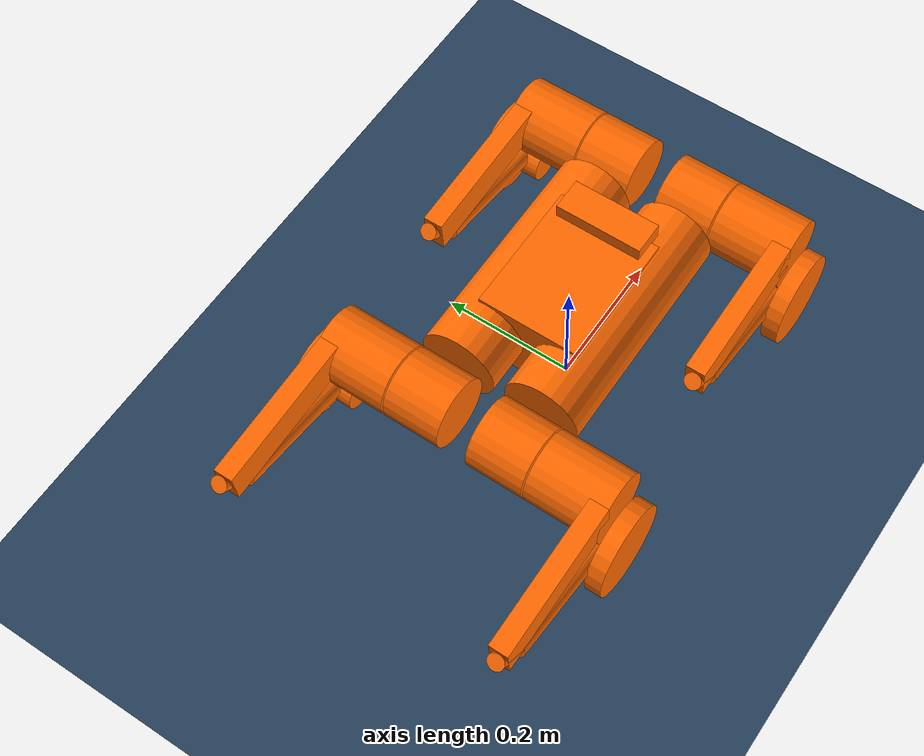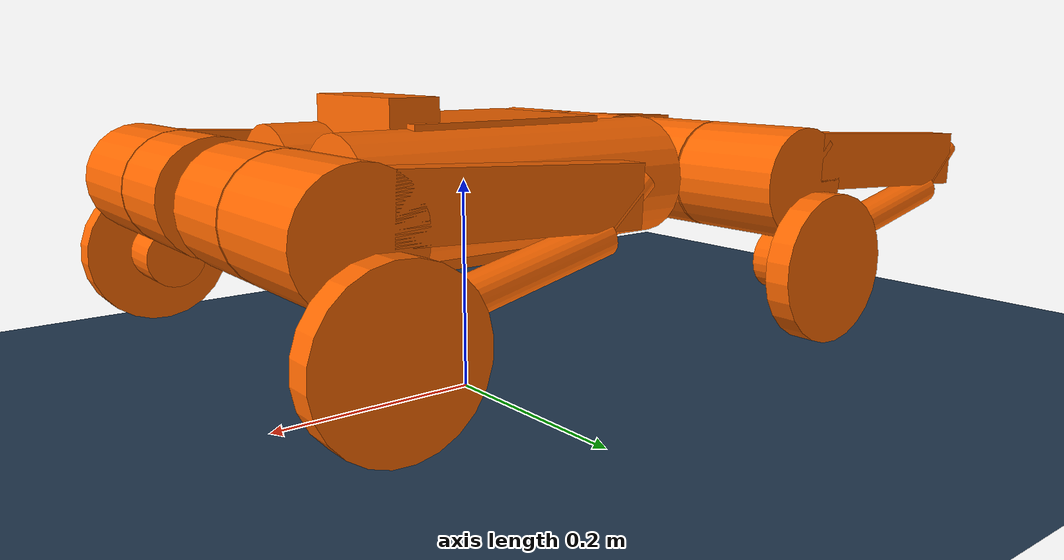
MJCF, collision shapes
<mujoco model="hb50w scene">
  <include file="hb50w.xml"/>

  <statistic center="0 0 0.15" extent="0.8"/>

  <visual>
    <headlight diffuse="0.6 0.6 0.6" ambient="0.3 0.3 0.3" specular="0 0 0"/>
    <rgba haze="0.15 0.25 0.35 1"/>
    <global azimuth="-130" elevation="-20"/>
  </visual>

  <asset>
    <texture type="skybox" builtin="gradient" rgb1="0.3 0.5 0.7" rgb2="0 0 0" width="512" height="3072"/>
    <texture type="2d" name="groundplane" builtin="checker" mark="edge" rgb1="0.2 0.3 0.4" rgb2="0.1 0.2 0.3"
      markrgb="0.8 0.8 0.8" width="300" height="300"/>
    <material name="groundplane" texture="groundplane" texuniform="true" texrepeat="5 5" reflectance="0.2"/>
  </asset>

  <worldbody>
    <light pos="0 0 1.5" dir="0 0 -1" directional="true"/>
    <geom name="floor" size="0 0 0.05" type="plane" material="groundplane"/>
  </worldbody>
</mujoco>

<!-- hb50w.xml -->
<mujoco model="hb50w">
  <compiler angle="radian" autolimits="true"/>

  <default>
    <default class="hb50w">
      <default class="drive">
        <joint axis="1 0 0" armature="0.0094" damping="0.1" frictionloss="0.48"/>
        <motor ctrlrange="-24 24"/>
      </default>
      <default class="wheel">
        <joint axis="1 0 0" armature="0.0016" damping="0.1" frictionloss="0.1"/>
        <motor ctrlrange="-7 7"/>
      </default>
      <default class="visual">
        <geom type="mesh" contype="0" conaffinity="0" group="2"/>
      </default>
      <default class="collision">
        <geom group="3" priority="1" condim="3" friction="0.9" solref="0.005 1" rgba="1 0.41 0 0.2"/>
      </default>
    </default>
  </default>

  <asset>
    <material name="silver" rgba="0.6 0.6 0.6 1" specular="0.1" shininess="0.05"/>
    <material name="black" rgba="0.1 0.1 0.1 1" specular="0.1" shininess="0.05"/>
    <material name="red" rgba="1 0 0 1" specular="0.1" shininess="0.05"/>
    <mesh name="body" file="../../meshes/hb50w/visual/hb50w_body.stl" scale="0.001 0.001 0.001"/>
    <mesh name="l0_fr_rl" file="../../meshes/hb50w/visual/hb50w_l0_fr_rl.stl" scale="0.001 0.001 0.001"/>
    <mesh name="l0_fl_rr" file="../../meshes/hb50w/visual/hb50w_l0_fl_rr.stl" scale="0.001 0.001 0.001"/>
    <mesh name="l1_fr" file="../../meshes/hb50w/visual/hb50w_l1_fr.stl" scale="0.001 0.001 0.001"/>
    <mesh name="l1_fl" file="../../meshes/hb50w/visual/hb50w_l1_fl.stl" scale="0.001 0.001 0.001"/>
    <mesh name="l1_rl" file="../../meshes/hb50w/visual/hb50w_l1_rl.stl" scale="0.001 0.001 0.001"/>
    <mesh name="l1_rr" file="../../meshes/hb50w/visual/hb50w_l1_rr.stl" scale="0.001 0.001 0.001"/>
    <mesh name="l2_r" file="../../meshes/hb50w/visual/hb50w_l2_r.stl" scale="0.001 0.001 0.001"/>
    <mesh name="l2_l" file="../../meshes/hb50w/visual/hb50w_l2_l.stl" scale="0.001 0.001 0.001"/>
    <mesh name="wheel" file="../../meshes/hb50w/visual/hb50w_wheel.stl" scale="0.001 0.001 0.001"/>
  </asset>

  <worldbody>
    <body name="body" pos="0 0 0.2" childclass="hb50w">
      <site name="imu" pos="0.069301 0 0"/>
      <inertial pos="0 0 0" mass="9.222" diaginertia="0.04644 0.10130 0.13120"/>
      <freejoint name="root"/>
      <geom mesh="body" material="silver" class="visual"/>
      <geom type="box" size="0.098 0.076 0.062" pos="0 0 -0.002" class="collision"/>
      <geom type="cylinder" size="0.056 0.165" pos="0 0.064 0" euler="0 1.570796 0" class="collision"/>
      <geom type="cylinder" size="0.056 0.165" pos="0 -0.064 0" euler="0 1.570796 0" class="collision"/>
      <geom type="box" size="0.024 0.064 0.024" pos="0.09 0 0.057" class="collision"/>
      <body name="fr_l0" pos="0.1661 -0.064 0">
        <inertial pos="0.059079 0.004785 -0.000588" mass="1.536" diaginertia="0.001492 0.001701 0.001759"/>
        <joint name="fr_j0" range="-1.047198 1.570796" class="drive"/>
        <geom mesh="l0_fr_rl" material="silver" class="visual"/>
        <geom type="cylinder" size="0.051 0.042" pos="0.0585 0 0" euler="1.570796 0 0" class="collision"/>
        <body name="fr_l1" pos="0.0585 -0.0425 0" quat="0.707107 0 0 -0.707107">
          <inertial pos="0.055224 -0.015337 0.003302" mass="1.784" diaginertia="0.006461 0.002438 0.007101"/>
          <joint name="fr_j1" range="-1.570796 1.570796" class="drive"/>
          <geom mesh="l1_fr" material="silver" class="visual"/>
          <geom type="cylinder" size="0.051 0.055" pos="0.057 0 0" euler="0 1.570796 0" class="collision"/>
          <geom type="box" size="0.014 0.11 0.026" pos="0.098 -0.134 0.013" euler="0.05 0 0" class="collision"/>
          <body name="fr_l2" pos="0.10015 -0.22 0" quat="0.173648 0.984808 0 0">
            <inertial pos="-0.001567 -0.190811 0.000848" mass="0.526" diaginertia="0.002319 0.0001582 0.002306"/>
            <joint name="fr_j2" range="-2.705260 0" class="drive"/>
            <geom quat="0 1 0 0" mesh="l2_r" material="silver" class="visual"/>
            <geom type="cylinder" size="0.012 0.03" pos="0 0.01 0.004" euler="1.2 0 0" class="collision"/>
            <geom type="cylinder" size="0.016 0.098" pos="0 -0.11 0.006" euler="1.7 0.01 -0.005" class="collision"/>
            <geom type="cylinder" size="0.028 0.025" pos="-0.0072 -0.22 0" euler="0 1.570796 0" class="collision"/>
            <body name="fr_w" pos="0.0175 -0.22 0">
              <inertial pos="0.006794 0 0" mass="0.235" diaginertia="0.0007179 0.0003692 0.0003692"/>
              <joint name="fr_j3" class="wheel"/>
              <geom name="fr_wheel" type="cylinder" size="0.0679 0.012" pos="0.009 0 0" euler="0 1.570796 0"
                class="collision"/>
              <geom mesh="wheel" material="red" class="visual"/>
            </body>
          </body>
        </body>
      </body>
      <body name="fl_l0" pos="0.1661 0.064 0">
        <inertial pos="0.059079 -0.004785 0.000588" mass="1.536" diaginertia="0.001492 0.001701 0.001759"/>
        <joint name="fl_j0" range="-1.570796 1.047198" class="drive"/>
        <geom mesh="l0_fl_rr" material="silver" class="visual"/>
        <geom type="cylinder" size="0.051 0.042" pos="0.0585 0 0" euler="1.570796 0 0" class="collision"/>
        <body name="fl_l1" pos="0.0585 0.0425 0" quat="0.707107 0 0 0.707107">
          <inertial pos="0.055224 0.015337 0.003302" mass="1.784" diaginertia="0.006461 0.002438 0.007101"/>
          <joint name="fl_j1" range="-1.570796 1.570796" class="drive"/>
          <geom quat="0 0 0 1" mesh="l1_fl" material="silver" class="visual"/>
          <geom type="cylinder" size="0.051 0.055" pos="0.057 0 0" euler="0 1.570796 0" class="collision"/>
          <geom type="box" size="0.014 0.11 0.026" pos="0.098 0.134 0.013" euler="-0.05 0 0" class="collision"/>
          <body name="fl_l2" pos="0.10015 0.22 0" quat="0.173648 -0.984808 0 0">
            <inertial pos="-0.001567 0.190811 0.000848" mass="0.526" diaginertia="0.002319 0.0001582 0.002306"/>
            <joint name="fl_j2" range="0 2.705260" class="drive"/>
            <geom quat="0 0 1 0" mesh="l2_l" material="silver" class="visual"/>
            <geom type="cylinder" size="0.012 0.03" pos="0 -0.01 0.004" euler="-1.2 0 0" class="collision"/>
            <geom type="cylinder" size="0.016 0.098" pos="0 0.11 0.006" euler="-1.7 0.01 0.005" class="collision"/>
            <geom type="cylinder" size="0.028 0.025" pos="-0.0072 0.22 0" euler="0 1.570796 0" class="collision"/>
            <body name="fl_w" pos="0.0175 0.22 0">
              <inertial pos="0.006794 0 0" mass="0.235" diaginertia="0.0007179 0.0003692 0.0003692"/>
              <joint name="fl_j3" class="wheel"/>
              <geom name="fl_wheel" type="cylinder" size="0.0679 0.012" pos="0.009 0 0" euler="0 1.570796 0"
                class="collision"/>
              <geom mesh="wheel" material="black" class="visual"/>
            </body>
          </body>
        </body>
      </body>
      <body name="rl_l0" pos="-0.1645 0.064 0" quat="0 0 0 -1">
        <inertial pos="0.058684 0.004487 0.000600" mass="1.525" diaginertia="0.001474 0.001666 0.001711"/>
        <joint name="rl_j0" range="-1.047198 1.570796" class="drive"/>
        <geom mesh="l0_fr_rl" material="silver" class="visual"/>
        <geom type="cylinder" size="0.051 0.042" pos="0.0585 0 0" euler="1.570796 0 0" class="collision"/>
        <body name="rl_l1" pos="0.0585 -0.0425 0" quat="0.707107 0 0 -0.707107">
          <inertial pos="0.055591 0.019865 0.002679" mass="1.753" diaginertia="0.006329 0.002338 0.006986"/>
          <joint name="rl_j1" range="-3.141593 1.570796" class="drive"/>
          <geom quat="0 0 0 1" mesh="l1_rl" material="silver" class="visual"/>
          <geom type="cylinder" size="0.051 0.055" pos="0.057 0 0" euler="0 1.570796 0" class="collision"/>
          <geom type="box" size="0.014 0.11 0.026" pos="0.098 0.134 0.013" euler="-0.05 0 0" class="collision"/>
          <body name="rl_l2" pos="0.10015 0.22 0" quat="0.173648 -0.984808 0 0">
            <inertial pos="-0.001567 0.190811 0.000848" mass="0.526" diaginertia="0.002319 0.0001582 0.002306"/>
            <joint name="rl_j2" range="0 2.705260" class="drive"/>
            <geom quat="0 0 1 0" mesh="l2_l" material="silver" class="visual"/>
            <geom type="cylinder" size="0.012 0.03" pos="0 -0.01 0.004" euler="-1.2 0 0" class="collision"/>
            <geom type="cylinder" size="0.016 0.098" pos="0 0.11 0.006" euler="-1.7 0.01 0.005" class="collision"/>
            <geom type="cylinder" size="0.028 0.025" pos="-0.0072 0.22 0" euler="0 1.570796 0" class="collision"/>
            <body name="rl_w" pos="0.0175 0.22 0">
              <inertial pos="0.006794 0 0" mass="0.235" diaginertia="0.0007179 0.0003692 0.0003692"/>
              <joint name="rl_j3" class="wheel"/>
              <geom name="rl_wheel" type="cylinder" size="0.0679 0.012" pos="0.009 0 0" euler="0 1.570796 0"
                class="collision"/>
              <geom mesh="wheel" material="black" class="visual"/>
            </body>
          </body>
        </body>
      </body>
      <body name="rr_l0" pos="-0.1645 -0.064 0" quat="0 0 0 -1">
        <inertial pos="0.058684 -0.004487 -0.000600" mass="1.525" diaginertia="0.001474 0.001666 0.001711"/>
        <joint name="rr_j0" range="-1.570796 1.047198" class="drive"/>
        <geom mesh="l0_fl_rr" material="silver" class="visual"/>
        <geom type="cylinder" size="0.051 0.042" pos="0.0585 0 0" euler="1.570796 0 0" class="collision"/>
        <body name="rr_l1" pos="0.0585 0.0425 0" quat="0.707107 0 0 0.707107">
          <inertial pos="0.055591 -0.019865 0.002679" mass="1.753" diaginertia="0.006329 0.002338 0.006986"/>
          <joint name="rr_j1" range="-1.570796 3.141593" class="drive"/>
          <geom mesh="l1_rr" material="silver" class="visual"/>
          <geom type="cylinder" size="0.051 0.055" pos="0.057 0 0" euler="0 1.570796 0" class="collision"/>
          <geom type="box" size="0.014 0.11 0.026" pos="0.098 -0.134 0.013" euler="0.05 0 0" class="collision"/>
          <body name="rr_l2" pos="0.10015 -0.22 0" quat="0.173648 0.984808 0 0">
            <inertial pos="-0.001567 -0.190811 0.000848" mass="0.526" diaginertia="0.002319 0.0001582 0.002306"/>
            <joint name="rr_j2" range="-2.705260 0" class="drive"/>
            <geom quat="0 1 0 0" mesh="l2_r" material="silver" class="visual"/>
            <geom type="cylinder" size="0.012 0.03" pos="0 0.01 0.004" euler="1.2 0 0" class="collision"/>
            <geom type="cylinder" size="0.016 0.098" pos="0 -0.11 0.006" euler="1.7 0.01 -0.005" class="collision"/>
            <geom type="cylinder" size="0.028 0.025" pos="-0.0072 -0.22 0" euler="0 1.570796 0" class="collision"/>
            <body name="rr_w" pos="0.0175 -0.22 0">
              <inertial pos="0.006794 0 0" mass="0.235" diaginertia="0.0007179 0.0003692 0.0003692"/>
              <joint name="rr_j3" class="wheel"/>
              <geom name="rr_wheel" type="cylinder" size="0.0679 0.012" pos="0.009 0 0" euler="0 1.570796 0"
                class="collision"/>
              <geom mesh="wheel" material="black" class="visual"/>
            </body>
          </body>
        </body>
      </body>
    </body>
  </worldbody>

  <actuator>
    <motor name="fr_j0" joint="fr_j0" class="drive"/>
    <motor name="fr_j1" joint="fr_j1" class="drive"/>
    <motor name="fr_j2" joint="fr_j2" class="drive"/>
    <motor name="fl_j0" joint="fl_j0" class="drive"/>
    <motor name="fl_j1" joint="fl_j1" class="drive"/>
    <motor name="fl_j2" joint="fl_j2" class="drive"/>
    <motor name="rl_j0" joint="rl_j0" class="drive"/>
    <motor name="rl_j1" joint="rl_j1" class="drive"/>
    <motor name="rl_j2" joint="rl_j2" class="drive"/>
    <motor name="rr_j0" joint="rr_j0" class="drive"/>
    <motor name="rr_j1" joint="rr_j1" class="drive"/>
    <motor name="rr_j2" joint="rr_j2" class="drive"/>
    <motor name="fr_j3" joint="fr_j3" class="wheel"/>
    <motor name="fl_j3" joint="fl_j3" class="wheel"/>
    <motor name="rl_j3" joint="rl_j3" class="wheel"/>
    <motor name="rr_j3" joint="rr_j3" class="wheel"/>
  </actuator>

  <sensor>
    <actuatorpos name="fr_j0_pos" actuator="fr_j0" noise="6.37e-4"/>
    <actuatorpos name="fr_j1_pos" actuator="fr_j1" noise="6.37e-4"/>
    <actuatorpos name="fr_j2_pos" actuator="fr_j2" noise="6.37e-4"/>
    <actuatorpos name="fr_j3_pos" actuator="fr_j3" noise="6.37e-4"/>
    <actuatorpos name="fl_j0_pos" actuator="fl_j0" noise="6.37e-4"/>
    <actuatorpos name="fl_j1_pos" actuator="fl_j1" noise="6.37e-4"/>
    <actuatorpos name="fl_j2_pos" actuator="fl_j2" noise="6.37e-4"/>
    <actuatorpos name="fl_j3_pos" actuator="fl_j3" noise="6.37e-4"/>
    <actuatorpos name="rl_j0_pos" actuator="rl_j0" noise="6.37e-4"/>
    <actuatorpos name="rl_j1_pos" actuator="rl_j1" noise="6.37e-4"/>
    <actuatorpos name="rl_j2_pos" actuator="rl_j2" noise="6.37e-4"/>
    <actuatorpos name="rl_j3_pos" actuator="rl_j3" noise="6.37e-4"/>
    <actuatorpos name="rr_j0_pos" actuator="rr_j0" noise="6.37e-4"/>
    <actuatorpos name="rr_j1_pos" actuator="rr_j1" noise="6.37e-4"/>
    <actuatorpos name="rr_j2_pos" actuator="rr_j2" noise="6.37e-4"/>
    <actuatorpos name="rr_j3_pos" actuator="rr_j3" noise="6.37e-4"/>
    <actuatorvel name="fr_j0_vel" actuator="fr_j0" noise="0.38"/>
    <actuatorvel name="fr_j1_vel" actuator="fr_j1" noise="0.38"/>
    <actuatorvel name="fr_j2_vel" actuator="fr_j2" noise="0.38"/>
    <actuatorvel name="fr_j3_vel" actuator="fr_j3" noise="0.38"/>
    <actuatorvel name="fl_j0_vel" actuator="fl_j0" noise="0.38"/>
    <actuatorvel name="fl_j1_vel" actuator="fl_j1" noise="0.38"/>
    <actuatorvel name="fl_j2_vel" actuator="fl_j2" noise="0.38"/>
    <actuatorvel name="fl_j3_vel" actuator="fl_j3" noise="0.38"/>
    <actuatorvel name="rl_j0_vel" actuator="rl_j0" noise="0.38"/>
    <actuatorvel name="rl_j1_vel" actuator="rl_j1" noise="0.38"/>
    <actuatorvel name="rl_j2_vel" actuator="rl_j2" noise="0.38"/>
    <actuatorvel name="rl_j3_vel" actuator="rl_j3" noise="0.38"/>
    <actuatorvel name="rr_j0_vel" actuator="rr_j0" noise="0.38"/>
    <actuatorvel name="rr_j1_vel" actuator="rr_j1" noise="0.38"/>
    <actuatorvel name="rr_j2_vel" actuator="rr_j2" noise="0.38"/>
    <actuatorvel name="rr_j3_vel" actuator="rr_j3" noise="0.38"/>
    <jointactuatorfrc name="fr_j0_trq" joint="fr_j0" noise="0.00518"/>
    <jointactuatorfrc name="fr_j1_trq" joint="fr_j1" noise="0.00518"/>
    <jointactuatorfrc name="fr_j2_trq" joint="fr_j2" noise="0.00518"/>
    <jointactuatorfrc name="fr_j3_trq" joint="fr_j3" noise="0.00518"/>
    <jointactuatorfrc name="fl_j0_trq" joint="fl_j0" noise="0.00518"/>
    <jointactuatorfrc name="fl_j1_trq" joint="fl_j1" noise="0.00518"/>
    <jointactuatorfrc name="fl_j2_trq" joint="fl_j2" noise="0.00518"/>
    <jointactuatorfrc name="fl_j3_trq" joint="fl_j3" noise="0.00518"/>
    <jointactuatorfrc name="rl_j0_trq" joint="rl_j0" noise="0.00518"/>
    <jointactuatorfrc name="rl_j1_trq" joint="rl_j1" noise="0.00518"/>
    <jointactuatorfrc name="rl_j2_trq" joint="rl_j2" noise="0.00518"/>
    <jointactuatorfrc name="rl_j3_trq" joint="rl_j3" noise="0.00518"/>
    <jointactuatorfrc name="rr_j0_trq" joint="rr_j0" noise="0.00518"/>
    <jointactuatorfrc name="rr_j1_trq" joint="rr_j1" noise="0.00518"/>
    <jointactuatorfrc name="rr_j2_trq" joint="rr_j2" noise="0.00518"/>
    <jointactuatorfrc name="rr_j3_trq" joint="rr_j3" noise="0.00518"/>
    <framequat name="torso-orientation" objtype="site" objname="imu"/>
    <gyro name="torso-angular-velocity" site="imu" noise="0.1565" cutoff="520"/>
    <accelerometer name="torso-linear-acceleration" site="imu" noise="0.00134" cutoff="500"/>
    <magnetometer name="torso-magnetometer" site="imu"/>
  </sensor>

  <keyframe>
    <key name="home" qpos="0 0 0.3931 1 0 0 0 0.05 0.7 -1.27 0 -0.05 -0.7 1.27 0 0.05 -0.7 1.27 0 -0.05 0.7 -1.27 0"
      ctrl="0 0 0 0 0 0 0 0 0 0 0 0 0 0 0 0"/>
  </keyframe>
</mujoco>
